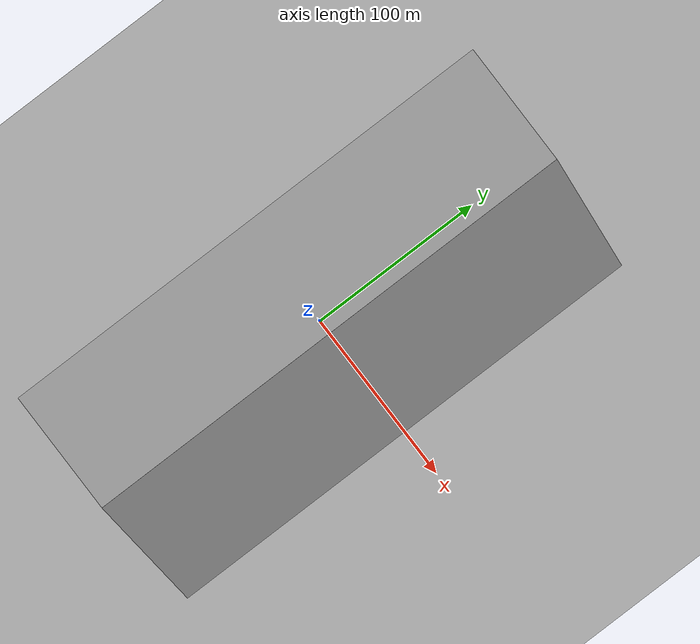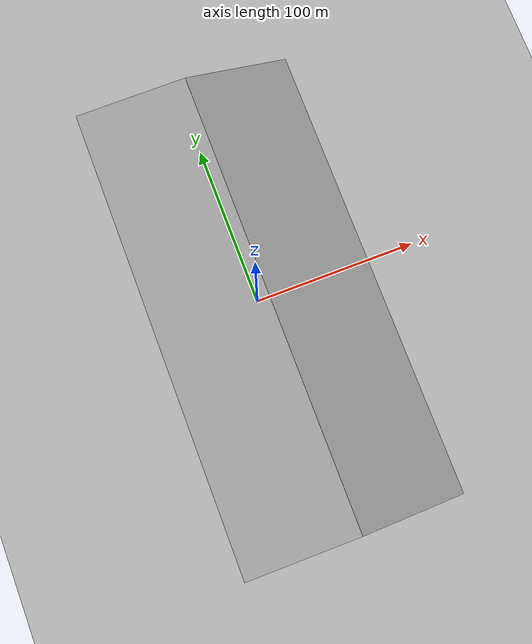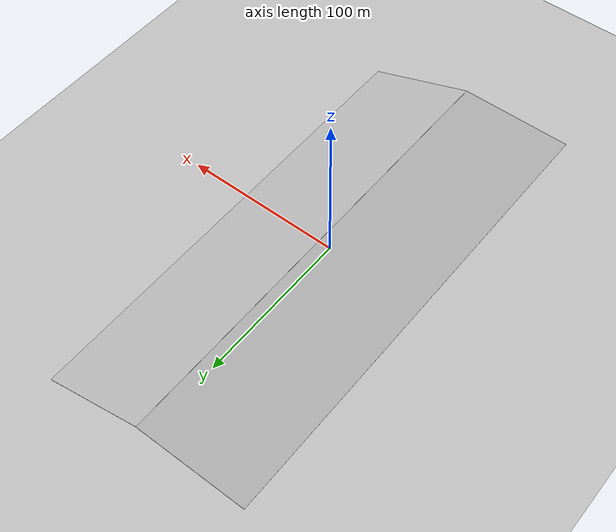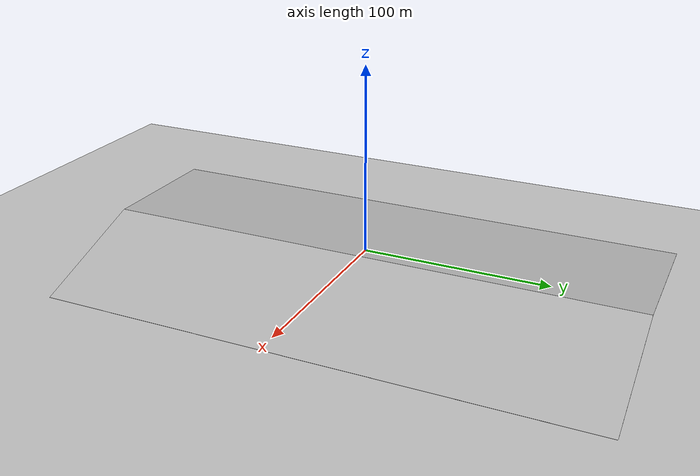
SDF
<?xml version="1.0" encoding="utf-8"?>

<sdf version="1.6">

   <world name="default">

      <gui fullscreen="0">

         <camera name="user_camera">

            <pose>-15 0 4.57585 0 0 0</pose>

            <view_controller>orbit</view_controller>

         </camera>

      </gui>

      <scene>

         <sky>

           <clouds>

             <speed>12</speed>

           </clouds>

         </sky>

         <ambient>0.4 0.4 0.4 1</ambient>

         <background>0.7 0.7 0.7 1</background>

         <shadows>1</shadows>

      </scene>

      <gravity>0 0 -9.8066</gravity>

      <magnetic_field>6e-06 2.3e-05 -4.2e-05</magnetic_field>

      <physics default="0" name="default_physics" type="ode">

         <ode>

            <solver>

               <type>quick</type>

               <iters>10</iters>

               <sor>1.0</sor>

               <use_dynamic_moi_rescaling>0</use_dynamic_moi_rescaling>

            </solver>

            <constraints>

               <cfm>0</cfm>

               <erp>0.2</erp>

               <contact_max_correcting_vel>100</contact_max_correcting_vel>

               <contact_surface_layer>0.001</contact_surface_layer>

            </constraints>

         </ode>

         <max_step_size>0.004</max_step_size>

         <real_time_factor>1</real_time_factor>

         <real_time_update_rate>250</real_time_update_rate>

      </physics>

      <light name="sun" type="directional">

         <cast_shadows>1</cast_shadows>

         <pose>0 0 10 0 0 0</pose>

         <diffuse>0.8 0.8 0.8 1</diffuse>

         <specular>0.2 0.2 0.2 1</specular>

         <attenuation>

            <range>1000</range>

            <constant>0.9</constant>

            <linear>0.01</linear>

            <quadratic>0.001</quadratic>

         </attenuation>

         <direction>-0.5 0.1 -0.9</direction>

      </light>

      <include>

         <name>ground_plane_1</name>

         <uri>model://HANNAS_ground_plane</uri>

         <pose>126 0 -24.7500 0 0 0</pose>

      </include>

      <model name="slope_1">

         <static>1</static>

         <pose frame="">-28.1820 0.0000 -0.1000 0.000000 0.000000 0.000000</pose>

         <link name="link">

            <pose frame="">0 0 0.00 0 0 0</pose>

            <collision name="collision">

               <geometry>

                  <box>

                     <size>72.3641 300.0 0.1000</size>

                  </box>

               </geometry>

               <max_contacts>10</max_contacts>

               <surface>

                  <contact>

                     <ode/>

                  </contact>

                  <bounce/>

                  <friction>

                     <torsional>

                        <ode/>

                     </torsional>

                     <ode/>

                  </friction>

               </surface>

            </collision>

            <visual name="visual">

               <cast_shadows>0</cast_shadows>

               <geometry>

                  <box>

                     <size>72.3641 300.0 0.1000</size>

                  </box>

               </geometry>

               <material>

                  <script>

                     <uri>model://HANNAS_wall/materials/scripts</uri>

                     <uri>model://HANNAS_wall/materials/textures</uri>

                     <name>vrc/HANNAS_wall</name>

                  </script>

               </material>

            </visual>

            <self_collide>0</self_collide>

            <enable_wind>0</enable_wind>

            <kinematic>0</kinematic>

         </link>

      </model>

      <model name="slope_2">

         <static>1</static>

         <pose frame="">42.0000 0.0000 -12.3750 0.000000 0.349066 0.000000</pose>

         <link name="link">

            <pose frame="">0 0 0.00 0 0 0</pose>

            <collision name="collision">

               <geometry>

                  <box>

                     <size>72.3641 300.0 0.1000</size>

                  </box>

               </geometry>

               <max_contacts>10</max_contacts>

               <surface>

                  <contact>

                     <ode/>

                  </contact>

                  <bounce/>

                  <friction>

                     <torsional>

                        <ode/>

                     </torsional>

                     <ode/>

                  </friction>

               </surface>

            </collision>

            <visual name="visual">

               <cast_shadows>0</cast_shadows>

               <geometry>

                  <box>

                     <size>72.3641 300.0 0.1000</size>

                  </box>

               </geometry>

               <material>

                  <script>

                     <uri>model://HANNAS_wall/materials/scripts</uri>

                     <uri>model://HANNAS_wall/materials/textures</uri>

                     <name>vrc/HANNAS_wall</name>

                  </script>

               </material>

            </visual>

            <self_collide>0</self_collide>

            <enable_wind>0</enable_wind>

            <kinematic>0</kinematic>

         </link>

      </model>

   </world>

</sdf>

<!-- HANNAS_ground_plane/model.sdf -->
<sdf version="1.4">
<model name="HANNAS_ground_plane">
  <static>true</static>
    <link name="link">
      <collision name="collision">
        <geometry>
          <plane>
            <normal>0 0 1</normal>
            <size>1000 1000</size>
          </plane>
        </geometry>
        <surface>
          <friction>
            <ode>
              <mu>100</mu>
              <mu2>50</mu2>
            </ode>
          </friction>
        </surface>
      </collision>
      <visual name="visual">
        <cast_shadows>false</cast_shadows>
        <geometry>
          <plane>
            <normal>0 0 1</normal>
            <size>1000 1000</size>
          </plane>
        </geometry>
        <material>
          <script>
            <uri>model://HANNAS_ground_plane/materials/scripts/HANNAS_ground_plane.material</uri>
	    <uri>model://HANNAS_ground_plane/materials/textures</uri>
            <name>HANNASGroundPlane/Image</name>
          </script>
        </material>
      </visual>
    </link>
  </model>
</sdf>
